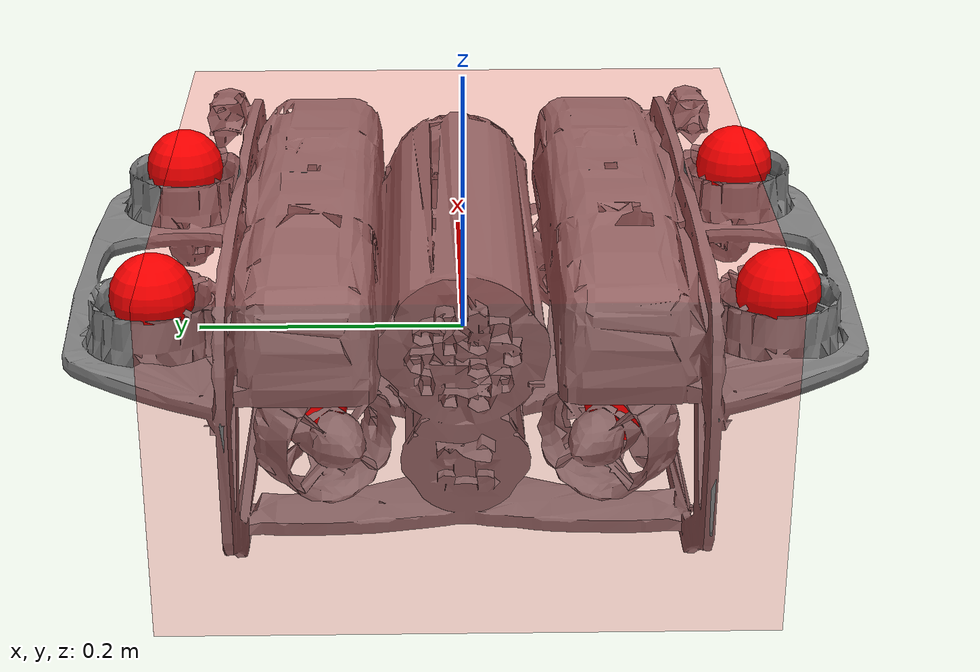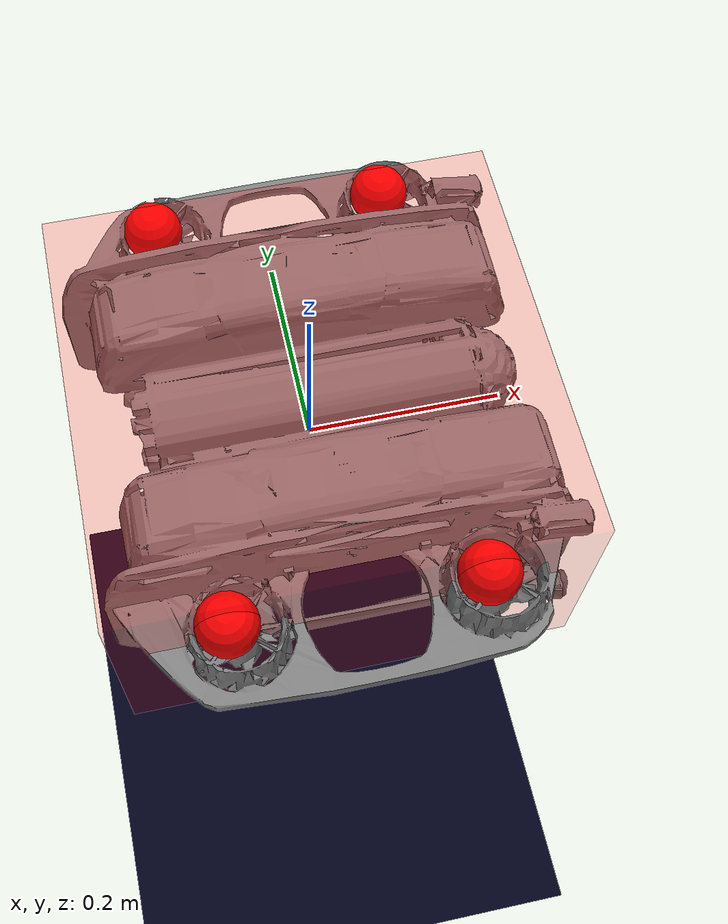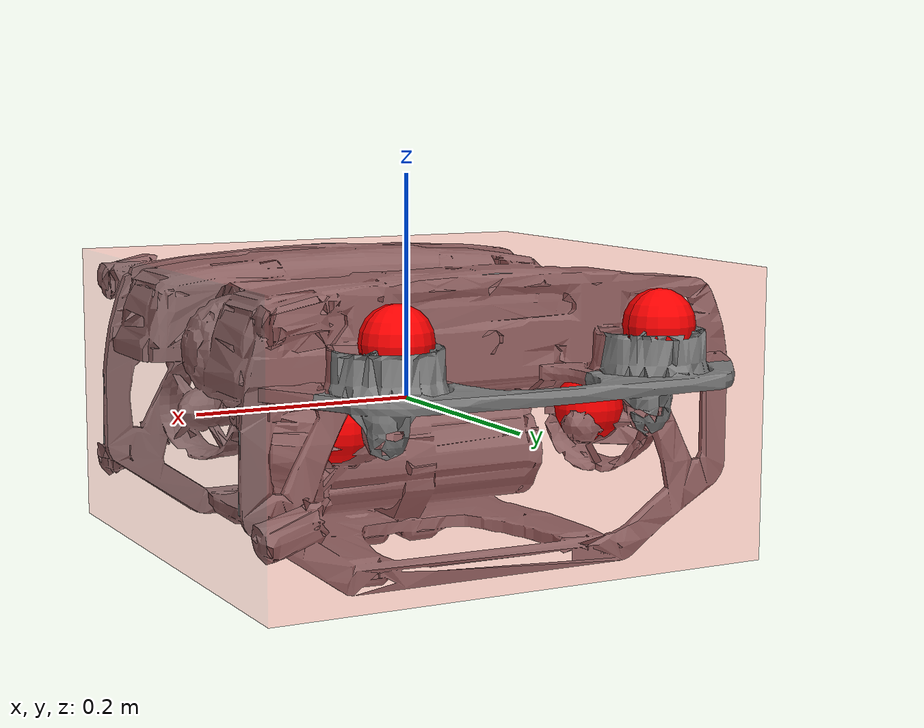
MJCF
<mujoco model="BlueRov2 Heavy">

  <compiler coordinate="local" angle="radian" autolimits="true" inertiafromgeom="false" assetdir="assets"/>

  <!-- contact="disable" energy enable -->

  <option timestep="0.01" integrator="RK4" density="1000" viscosity="0.0009" wind="0 0 0">
    <flag contact="disable"/>
  </option>

  <default>
    <default class="body">

      <default class="rotor">
          <site type="sphere" rgba="1 0 0 1" size=".03 .03 .01"/>
      </default>

    </default>
  </default>

  <asset>
    <material name="invisible" rgba="1 0 0 0.1"/>
    <mesh name="body_mesh" class="body" file="bluerov2.STL" scale="0.001 0.001 0.001"/>
  </asset>

  <worldbody>

    <light name="spotlight" mode="targetbodycom" target="body" pos="0 -1 20"/>

    <!-- fullinertia -->

    <geom type="plane" pos="0 0 -1" size="1 1 0.01" rgba="0 0 0.1 1"/>

    <body name="body" pos="0 0 0" childclass="body">

      <camera name="track" pos="0 0.21 -0.067" euler="3.14 0 1.57" mode="trackcom"/>

      <inertial pos="0 0 0" mass="12.5" diaginertia="0.17876 0.273365 0.323093"/>

      <joint type="free" stiffness="0" damping="0" frictionloss="0" armature="0"/>

      <site name="imu" pos="0 0 0"/>

      <body name="buoyancy" pos="0 0 0.02"/>

      <geom type="mesh" mesh="body_mesh" quat="1 0 0 0"/>

      <geom name='box' type='box' size="0.228 0.218 0.126" rgba="1 0 0 0.1"/>

      <site name="rotor1" class="rotor" pos="0.12 -0.113875 0."/>
      <site name="rotor2" class="rotor" pos="0.12 0.113875 0."/>
      <site name="rotor3" class="rotor" pos="-0.12 -0.113875 0."/>
      <site name="rotor4" class="rotor" pos="-0.12 0.113875 0."/>
      <site name="rotor5" class="rotor" pos="0.12 -0.21805 .083787"/>
      <site name="rotor6" class="rotor" pos="0.12 0.21805 .083787"/>
      <site name="rotor7" class="rotor" pos="-0.12 -0.21805 .083787"/>
      <site name="rotor8" class="rotor" pos="-0.12 0.21805 .083787"/>

    </body>
  </worldbody>

  <actuator>
    <!-- ctrllimited="true" ctrlrange="-1 1" -->

    <motor class="body" name="thrust1" site="rotor1" gear="-0.7 0.7 0 0 0 0"/>
    <motor class="body" name="thrust2" site="rotor2" gear="-0.7 -0.7 0 0 0 0"/>
    <motor class="body" name="thrust3" site="rotor3" gear="0.7 0.7 0 0 0 0"/>
    <motor class="body" name="thrust4" site="rotor4" gear="0.7 -0.7 0 0 0 0"/>
    <motor class="body" name="thrust5" site="rotor5" gear="0 0 -1.0 0 0 0"/>
    <motor class="body" name="thrust6" site="rotor6" gear="0 0 1.0 0 0 0"/>
    <motor class="body" name="thrust7" site="rotor7" gear="0 0 -1.0 0 0 0"/>
    <motor class="body" name="thrust8" site="rotor8" gear="0 0 1.0 0 0 0"/>

  </actuator>

  <sensor>
    <gyro name="body_gyro" site="imu"/>
    <accelerometer name="body_linacc" site="imu"/>
    <framequat name="body_quat" objtype="site" objname="imu"/>
  </sensor>

</mujoco>
